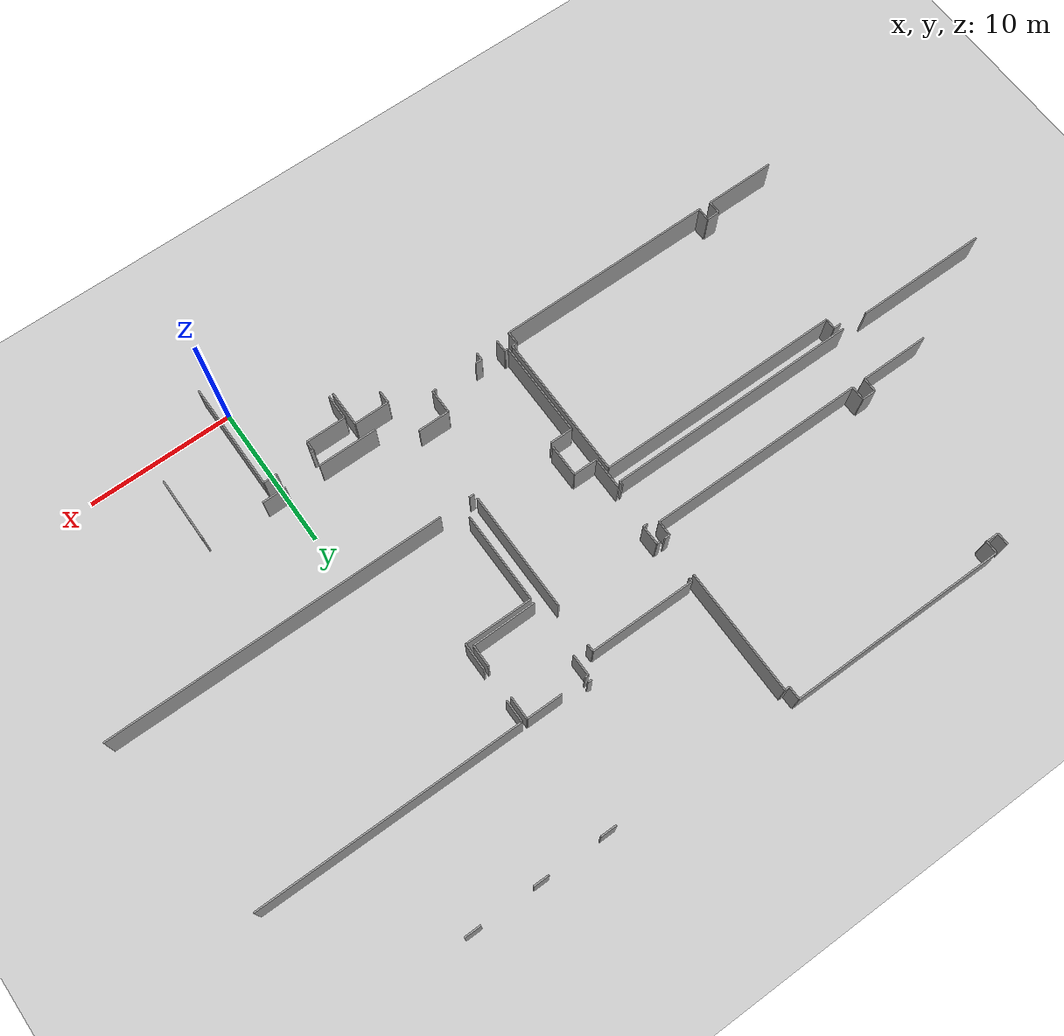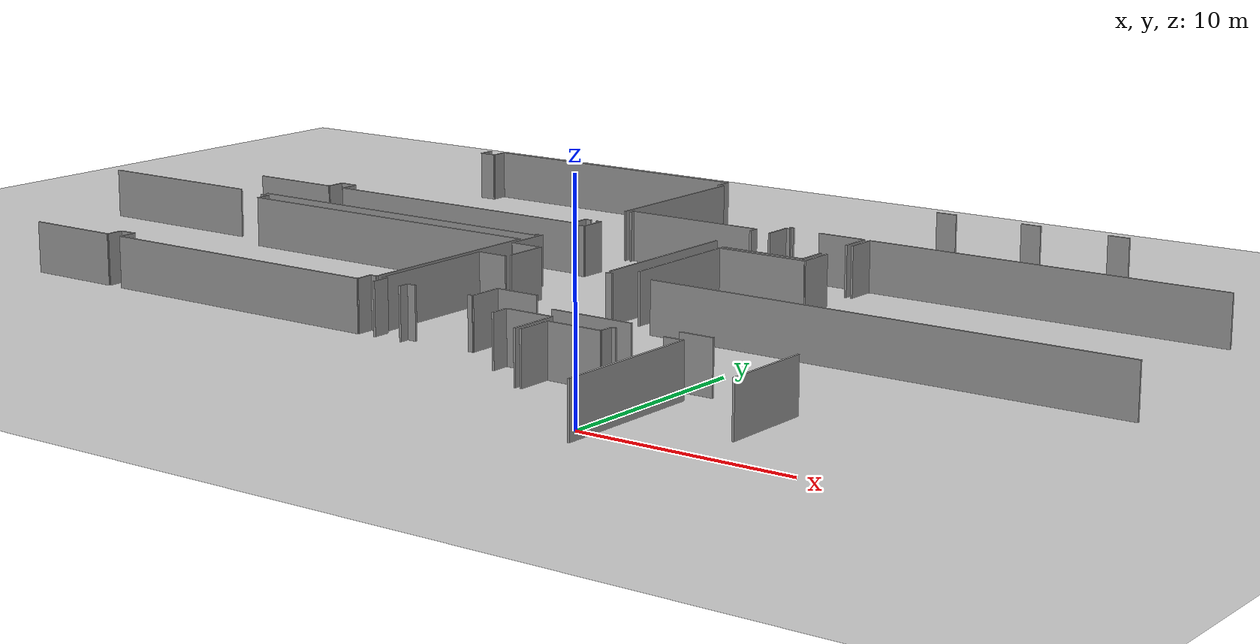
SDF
<sdf version="1.6">
 <world name="default">
  <model name="ground_plane">
   <static>1</static>
   <link name="link">
    <collision name="collision">
     <geometry><plane><normal>0 0 1</normal><size>100 100</size></plane></geometry>
     <surface><friction><ode><mu>100</mu><mu2>50</mu2></ode></friction></surface>
    </collision>
    <visual name="visual">
     <cast_shadows>0</cast_shadows>
     <geometry><plane><normal>0 0 1</normal><size>100 100</size></plane></geometry>
     <material>
      <script><uri>file://media/materials/scripts/gazebo.material</uri><name>Gazebo/Grey</name></script>
     </material>
    </visual>
   </link>
  </model>
  <model name="0510035740_A_40_1_103">
   <static>1</static>
   <link name="Wall_114">
    <collision name="Wall_114_Collision">
     <geometry><box><size>0.275883073292 0.1 2.5</size></box></geometry>
     <pose>0.137941536646 0 1.25 0 0 0</pose>
    </collision>
    <visual name="Wall_114_Visual">
     <pose>0.137941536646 0 1.25 0 0 0</pose>
     <geometry><box><size>0.275883073292 0.1 2.5</size></box></geometry>
     <material>
      <script><uri>file://media/materials/scripts/gazebo.material</uri><name>Gazebo/Grey</name></script>
      <ambient>1 1 1 1</ambient>
     </material>
    </visual>
    <pose>77.2378698375 -30.8539812059 0 0 0 -1.57079632679</pose>
   </link>
   <link name="Wall_115">
    <collision name="Wall_115_Collision">
     <geometry><box><size>17.5113417892 0.1 2.5</size></box></geometry>
     <pose>8.75567089459 0 1.25 0 0 0</pose>
    </collision>
    <visual name="Wall_115_Visual">
     <pose>8.75567089459 0 1.25 0 0 0</pose>
     <geometry><box><size>17.5113417892 0.1 2.5</size></box></geometry>
     <material>
      <script><uri>file://media/materials/scripts/gazebo.material</uri><name>Gazebo/Grey</name></script>
      <ambient>1 1 1 1</ambient>
     </material>
    </visual>
    <pose>77.2378698375 -31.1298642792 0 0 0 3.14159265359</pose>
   </link>
   <link name="Wall_116">
    <collision name="Wall_116_Collision">
     <geometry><box><size>9.19779445823 0.1 2.5</size></box></geometry>
     <pose>4.59889722911 0 1.25 0 0 0</pose>
    </collision>
    <visual name="Wall_116_Visual">
     <pose>4.59889722911 0 1.25 0 0 0</pose>
     <geometry><box><size>9.19779445823 0.1 2.5</size></box></geometry>
     <material>
      <script><uri>file://media/materials/scripts/gazebo.material</uri><name>Gazebo/Grey</name></script>
      <ambient>1 1 1 1</ambient>
     </material>
    </visual>
    <pose>57.9189482434 -31.1298642792 0 0 0 3.14159265359</pose>
   </link>
   <link name="Wall_152">
    <collision name="Wall_152_Collision">
     <geometry><box><size>0.504558923371 0.1 2.5</size></box></geometry>
     <pose>0.252279461685 0 1.25 0 0 0</pose>
    </collision>
    <visual name="Wall_152_Visual">
     <pose>0.252279461685 0 1.25 0 0 0</pose>
     <geometry><box><size>0.504558923371 0.1 2.5</size></box></geometry>
     <material>
      <script><uri>file://media/materials/scripts/gazebo.material</uri><name>Gazebo/Grey</name></script>
      <ambient>1 1 1 1</ambient>
     </material>
    </visual>
    <pose>59.682874057 -31.4859488715 0 0 0 0.0</pose>
   </link>
   <link name="Wall_153">
    <collision name="Wall_153_Collision">
     <geometry><box><size>0.75607697823 0.1 2.5</size></box></geometry>
     <pose>0.378038489115 0 1.25 0 0 0</pose>
    </collision>
    <visual name="Wall_153_Visual">
     <pose>0.378038489115 0 1.25 0 0 0</pose>
     <geometry><box><size>0.75607697823 0.1 2.5</size></box></geometry>
     <material>
      <script><uri>file://media/materials/scripts/gazebo.material</uri><name>Gazebo/Grey</name></script>
      <ambient>1 1 1 1</ambient>
     </material>
    </visual>
    <pose>60.1874329803 -31.4859488715 0 0 0 -1.57079632679</pose>
   </link>
   <link name="Wall_154">
    <collision name="Wall_154_Collision">
     <geometry><box><size>17.0509444617 0.1 2.5</size></box></geometry>
     <pose>8.52547223086 0 1.25 0 0 0</pose>
    </collision>
    <visual name="Wall_154_Visual">
     <pose>8.52547223086 0 1.25 0 0 0</pose>
     <geometry><box><size>17.0509444617 0.1 2.5</size></box></geometry>
     <material>
      <script><uri>file://media/materials/scripts/gazebo.material</uri><name>Gazebo/Grey</name></script>
      <ambient>1 1 1 1</ambient>
     </material>
    </visual>
    <pose>60.1874329803 -32.2420258498 0 0 0 0.0</pose>
   </link>
   <link name="Wall_155">
    <collision name="Wall_155_Collision">
     <geometry><box><size>10.02899691 0.1 2.5</size></box></geometry>
     <pose>5.01449845498 0 1.25 0 0 0</pose>
    </collision>
    <visual name="Wall_155_Visual">
     <pose>5.01449845498 0 1.25 0 0 0</pose>
     <geometry><box><size>10.02899691 0.1 2.5</size></box></geometry>
     <material>
      <script><uri>file://media/materials/scripts/gazebo.material</uri><name>Gazebo/Grey</name></script>
      <ambient>1 1 1 1</ambient>
     </material>
    </visual>
    <pose>77.2383774421 -32.2420258498 0 0 0 -1.57079632679</pose>
   </link>
   <link name="Wall_156">
    <collision name="Wall_156_Collision">
     <geometry><box><size>0.350500942241 0.1 2.5</size></box></geometry>
     <pose>0.17525047112 0 1.25 0 0 0</pose>
    </collision>
    <visual name="Wall_156_Visual">
     <pose>0.17525047112 0 1.25 0 0 0</pose>
     <geometry><box><size>0.350500942241 0.1 2.5</size></box></geometry>
     <material>
      <script><uri>file://media/materials/scripts/gazebo.material</uri><name>Gazebo/Grey</name></script>
      <ambient>1 1 1 1</ambient>
     </material>
    </visual>
    <pose>77.2383774421 -42.2710227597 0 0 0 3.14159265359</pose>
   </link>
   <link name="Wall_157">
    <collision name="Wall_157_Collision">
     <geometry><box><size>0.866734770277 0.1 2.5</size></box></geometry>
     <pose>0.433367385139 0 1.25 0 0 0</pose>
    </collision>
    <visual name="Wall_157_Visual">
     <pose>0.433367385139 0 1.25 0 0 0</pose>
     <geometry><box><size>0.866734770277 0.1 2.5</size></box></geometry>
     <material>
      <script><uri>file://media/materials/scripts/gazebo.material</uri><name>Gazebo/Grey</name></script>
      <ambient>1 1 1 1</ambient>
     </material>
    </visual>
    <pose>76.8878764998 -42.2710227597 0 0 0 -1.57079632679</pose>
   </link>
   <link name="Wall_158">
    <collision name="Wall_158_Collision">
     <geometry><box><size>15.0763627596 0.1 2.5</size></box></geometry>
     <pose>7.5381813798 0 1.25 0 0 0</pose>
    </collision>
    <visual name="Wall_158_Visual">
     <pose>7.5381813798 0 1.25 0 0 0</pose>
     <geometry><box><size>15.0763627596 0.1 2.5</size></box></geometry>
     <material>
      <script><uri>file://media/materials/scripts/gazebo.material</uri><name>Gazebo/Grey</name></script>
      <ambient>1 1 1 1</ambient>
     </material>
    </visual>
    <pose>76.8878764998 -43.13775753 0 0 0 3.14159265359</pose>
   </link>
   <link name="Wall_159">
    <collision name="Wall_159_Collision">
     <geometry><box><size>0.899729066071 0.1 2.5</size></box></geometry>
     <pose>0.449864533036 0 1.25 0 0 0</pose>
    </collision>
    <visual name="Wall_159_Visual">
     <pose>0.449864533036 0 1.25 0 0 0</pose>
     <geometry><box><size>0.899729066071 0.1 2.5</size></box></geometry>
     <material>
      <script><uri>file://media/materials/scripts/gazebo.material</uri><name>Gazebo/Grey</name></script>
      <ambient>1 1 1 1</ambient>
     </material>
    </visual>
    <pose>61.8115137402 -43.13775753 0 0 0 1.57079632679</pose>
   </link>
   <link name="Wall_160">
    <collision name="Wall_160_Collision">
     <geometry><box><size>0.877902070392 0.1 2.5</size></box></geometry>
     <pose>0.438951035196 0 1.25 0 0 0</pose>
    </collision>
    <visual name="Wall_160_Visual">
     <pose>0.438951035196 0 1.25 0 0 0</pose>
     <geometry><box><size>0.877902070392 0.1 2.5</size></box></geometry>
     <material>
      <script><uri>file://media/materials/scripts/gazebo.material</uri><name>Gazebo/Grey</name></script>
      <ambient>1 1 1 1</ambient>
     </material>
    </visual>
    <pose>61.8115137402 -42.2380284639 0 0 0 3.14159265359</pose>
   </link>
   <link name="Wall_161">
    <collision name="Wall_161_Collision">
     <geometry><box><size>0.877648268117 0.1 2.5</size></box></geometry>
     <pose>0.438824134058 0 1.25 0 0 0</pose>
    </collision>
    <visual name="Wall_161_Visual">
     <pose>0.438824134058 0 1.25 0 0 0</pose>
     <geometry><box><size>0.877648268117 0.1 2.5</size></box></geometry>
     <material>
      <script><uri>file://media/materials/scripts/gazebo.material</uri><name>Gazebo/Grey</name></script>
      <ambient>1 1 1 1</ambient>
     </material>
    </visual>
    <pose>60.9336116698 -42.2380284639 0 0 0 -1.57079632679</pose>
   </link>
   <link name="Wall_162">
    <collision name="Wall_162_Collision">
     <geometry><box><size>4.84432483384 0.1 2.5</size></box></geometry>
     <pose>2.42216241692 0 1.25 0 0 0</pose>
    </collision>
    <visual name="Wall_162_Visual">
     <pose>2.42216241692 0 1.25 0 0 0</pose>
     <geometry><box><size>4.84432483384 0.1 2.5</size></box></geometry>
     <material>
      <script><uri>file://media/materials/scripts/gazebo.material</uri><name>Gazebo/Grey</name></script>
      <ambient>1 1 1 1</ambient>
     </material>
    </visual>
    <pose>60.9336116698 -43.115676732 0 0 0 -3.14101634517</pose>
   </link>
   <link name="Wall_163">
    <collision name="Wall_163_Collision">
     <geometry><box><size>2.19564348394 0.1 2.5</size></box></geometry>
     <pose>1.09782174197 0 1.25 0 0 0</pose>
    </collision>
    <visual name="Wall_163_Visual">
     <pose>1.09782174197 0 1.25 0 0 0</pose>
     <geometry><box><size>2.19564348394 0.1 2.5</size></box></geometry>
     <material>
      <script><uri>file://media/materials/scripts/gazebo.material</uri><name>Gazebo/Grey</name></script>
      <ambient>1 1 1 1</ambient>
     </material>
    </visual>
    <pose>79.1809800575 -35.3077035336 0 0 0 1.57079632679</pose>
   </link>
   <link name="Wall_164">
    <collision name="Wall_164_Collision">
     <geometry><box><size>1.66570433304 0.1 2.5</size></box></geometry>
     <pose>0.83285216652 0 1.25 0 0 0</pose>
    </collision>
    <visual name="Wall_164_Visual">
     <pose>0.83285216652 0 1.25 0 0 0</pose>
     <geometry><box><size>1.66570433304 0.1 2.5</size></box></geometry>
     <material>
      <script><uri>file://media/materials/scripts/gazebo.material</uri><name>Gazebo/Grey</name></script>
      <ambient>1 1 1 1</ambient>
     </material>
    </visual>
    <pose>79.1809800575 -33.1120600496 0 0 0 3.14159265359</pose>
   </link>
   <link name="Wall_165">
    <collision name="Wall_165_Collision">
     <geometry><box><size>2.2207699092 0.1 2.5</size></box></geometry>
     <pose>1.1103849546 0 1.25 0 0 0</pose>
    </collision>
    <visual name="Wall_165_Visual">
     <pose>1.1103849546 0 1.25 0 0 0</pose>
     <geometry><box><size>2.2207699092 0.1 2.5</size></box></geometry>
     <material>
      <script><uri>file://media/materials/scripts/gazebo.material</uri><name>Gazebo/Grey</name></script>
      <ambient>1 1 1 1</ambient>
     </material>
    </visual>
    <pose>77.5152757244 -33.1120600496 0 0 0 1.57079632679</pose>
   </link>
   <link name="Wall_166">
    <collision name="Wall_166_Collision">
     <geometry><box><size>0.303547521304 0.1 2.5</size></box></geometry>
     <pose>0.151773760652 0 1.25 0 0 0</pose>
    </collision>
    <visual name="Wall_166_Visual">
     <pose>0.151773760652 0 1.25 0 0 0</pose>
     <geometry><box><size>0.303547521304 0.1 2.5</size></box></geometry>
     <material>
      <script><uri>file://media/materials/scripts/gazebo.material</uri><name>Gazebo/Grey</name></script>
      <ambient>1 1 1 1</ambient>
     </material>
    </visual>
    <pose>77.5152757244 -28.0098729085 0 0 0 0.0</pose>
   </link>
   <link name="Wall_167">
    <collision name="Wall_167_Collision">
     <geometry><box><size>1.32053323858 0.1 2.5</size></box></geometry>
     <pose>0.66026661929 0 1.25 0 0 0</pose>
    </collision>
    <visual name="Wall_167_Visual">
     <pose>0.66026661929 0 1.25 0 0 0</pose>
     <geometry><box><size>1.32053323858 0.1 2.5</size></box></geometry>
     <material>
      <script><uri>file://media/materials/scripts/gazebo.material</uri><name>Gazebo/Grey</name></script>
      <ambient>1 1 1 1</ambient>
     </material>
    </visual>
    <pose>77.8188232458 -28.0098729085 0 0 0 1.57079632679</pose>
   </link>
   <link name="Wall_168">
    <collision name="Wall_168_Collision">
     <geometry><box><size>0.265477180003 0.1 2.5</size></box></geometry>
     <pose>0.132738590001 0 1.25 0 0 0</pose>
    </collision>
    <visual name="Wall_168_Visual">
     <pose>0.132738590001 0 1.25 0 0 0</pose>
     <geometry><box><size>0.265477180003 0.1 2.5</size></box></geometry>
     <material>
      <script><uri>file://media/materials/scripts/gazebo.material</uri><name>Gazebo/Grey</name></script>
      <ambient>1 1 1 1</ambient>
     </material>
    </visual>
    <pose>77.8188232458 -26.6893396699 0 0 0 3.14159265359</pose>
   </link>
   <link name="Wall_169">
    <collision name="Wall_169_Collision">
     <geometry><box><size>0.2634467618 0.1 2.5</size></box></geometry>
     <pose>0.1317233809 0 1.25 0 0 0</pose>
    </collision>
    <visual name="Wall_169_Visual">
     <pose>0.1317233809 0 1.25 0 0 0</pose>
     <geometry><box><size>0.2634467618 0.1 2.5</size></box></geometry>
     <material>
      <script><uri>file://media/materials/scripts/gazebo.material</uri><name>Gazebo/Grey</name></script>
      <ambient>1 1 1 1</ambient>
     </material>
    </visual>
    <pose>77.5533460657 -23.8919309912 0 0 0 1.57079632679</pose>
   </link>
   <link name="Wall_170">
    <collision name="Wall_170_Collision">
     <geometry><box><size>7.26788195656 0.1 2.5</size></box></geometry>
     <pose>3.63394097828 0 1.25 0 0 0</pose>
    </collision>
    <visual name="Wall_170_Visual">
     <pose>3.63394097828 0 1.25 0 0 0</pose>
     <geometry><box><size>7.26788195656 0.1 2.5</size></box></geometry>
     <material>
      <script><uri>file://media/materials/scripts/gazebo.material</uri><name>Gazebo/Grey</name></script>
      <ambient>1 1 1 1</ambient>
     </material>
    </visual>
    <pose>77.5533460657 -23.6284842294 0 0 0 0.0</pose>
   </link>
   <link name="Wall_171">
    <collision name="Wall_171_Collision">
     <geometry><box><size>0.514711014384 0.1 2.5</size></box></geometry>
     <pose>0.257355507192 0 1.25 0 0 0</pose>
    </collision>
    <visual name="Wall_171_Visual">
     <pose>0.257355507192 0 1.25 0 0 0</pose>
     <geometry><box><size>0.514711014384 0.1 2.5</size></box></geometry>
     <material>
      <script><uri>file://media/materials/scripts/gazebo.material</uri><name>Gazebo/Grey</name></script>
      <ambient>1 1 1 1</ambient>
     </material>
    </visual>
    <pose>84.8212280223 -23.6284842294 0 0 0 -1.57079632679</pose>
   </link>
   <link name="Wall_172">
    <collision name="Wall_172_Collision">
     <geometry><box><size>8.28715189432 0.1 2.5</size></box></geometry>
     <pose>4.14357594716 0 1.25 0 0 0</pose>
    </collision>
    <visual name="Wall_172_Visual">
     <pose>4.14357594716 0 1.25 0 0 0</pose>
     <geometry><box><size>8.28715189432 0.1 2.5</size></box></geometry>
     <material>
      <script><uri>file://media/materials/scripts/gazebo.material</uri><name>Gazebo/Grey</name></script>
      <ambient>1 1 1 1</ambient>
     </material>
    </visual>
    <pose>84.8212280223 -26.9941562026 0 0 0 -1.57079632679</pose>
   </link>
   <link name="Wall_175">
    <collision name="Wall_175_Collision">
     <geometry><box><size>0.858105492916 0.1 2.5</size></box></geometry>
     <pose>0.429052746458 0 1.25 0 0 0</pose>
    </collision>
    <visual name="Wall_175_Visual">
     <pose>0.429052746458 0 1.25 0 0 0</pose>
     <geometry><box><size>0.858105492916 0.1 2.5</size></box></geometry>
     <material>
      <script><uri>file://media/materials/scripts/gazebo.material</uri><name>Gazebo/Grey</name></script>
      <ambient>1 1 1 1</ambient>
     </material>
    </visual>
    <pose>60.9346268789 -14.461907451 0 0 0 -1.57079632679</pose>
   </link>
   <link name="Wall_176">
    <collision name="Wall_176_Collision">
     <geometry><box><size>0.883485720449 0.1 2.5</size></box></geometry>
     <pose>0.441742860225 0 1.25 0 0 0</pose>
    </collision>
    <visual name="Wall_176_Visual">
     <pose>0.441742860225 0 1.25 0 0 0</pose>
     <geometry><box><size>0.883485720449 0.1 2.5</size></box></geometry>
     <material>
      <script><uri>file://media/materials/scripts/gazebo.material</uri><name>Gazebo/Grey</name></script>
      <ambient>1 1 1 1</ambient>
     </material>
    </visual>
    <pose>60.9346268789 -15.3200129439 0 0 0 0.0</pose>
   </link>
   <link name="Wall_177">
    <collision name="Wall_177_Collision">
     <geometry><box><size>0.870541804407 0.1 2.5</size></box></geometry>
     <pose>0.435270902204 0 1.25 0 0 0</pose>
    </collision>
    <visual name="Wall_177_Visual">
     <pose>0.435270902204 0 1.25 0 0 0</pose>
     <geometry><box><size>0.870541804407 0.1 2.5</size></box></geometry>
     <material>
      <script><uri>file://media/materials/scripts/gazebo.material</uri><name>Gazebo/Grey</name></script>
      <ambient>1 1 1 1</ambient>
     </material>
    </visual>
    <pose>61.8181125994 -15.3200129439 0 0 0 1.57079632679</pose>
   </link>
   <link name="Wall_178">
    <collision name="Wall_178_Collision">
     <geometry><box><size>15.0915908961 0.1 2.5</size></box></geometry>
     <pose>7.54579544806 0 1.25 0 0 0</pose>
    </collision>
    <visual name="Wall_178_Visual">
     <pose>7.54579544806 0 1.25 0 0 0</pose>
     <geometry><box><size>15.0915908961 0.1 2.5</size></box></geometry>
     <material>
      <script><uri>file://media/materials/scripts/gazebo.material</uri><name>Gazebo/Grey</name></script>
      <ambient>1 1 1 1</ambient>
     </material>
    </visual>
    <pose>61.8181125994 -14.4494711395 0 0 0 0.0</pose>
   </link>
   <link name="Wall_179">
    <collision name="Wall_179_Collision">
     <geometry><box><size>0.883739522725 0.1 2.5</size></box></geometry>
     <pose>0.441869761362 0 1.25 0 0 0</pose>
    </collision>
    <visual name="Wall_179_Visual">
     <pose>0.441869761362 0 1.25 0 0 0</pose>
     <geometry><box><size>0.883739522725 0.1 2.5</size></box></geometry>
     <material>
      <script><uri>file://media/materials/scripts/gazebo.material</uri><name>Gazebo/Grey</name></script>
      <ambient>1 1 1 1</ambient>
     </material>
    </visual>
    <pose>76.9097034955 -14.4494711395 0 0 0 -1.57079632679</pose>
   </link>
   <link name="Wall_180">
    <collision name="Wall_180_Collision">
     <geometry><box><size>0.318268053273 0.1 2.5</size></box></geometry>
     <pose>0.159134026637 0 1.25 0 0 0</pose>
    </collision>
    <visual name="Wall_180_Visual">
     <pose>0.159134026637 0 1.25 0 0 0</pose>
     <geometry><box><size>0.318268053273 0.1 2.5</size></box></geometry>
     <material>
      <script><uri>file://media/materials/scripts/gazebo.material</uri><name>Gazebo/Grey</name></script>
      <ambient>1 1 1 1</ambient>
     </material>
    </visual>
    <pose>76.9097034955 -15.3332106622 0 0 0 0.0</pose>
   </link>
   <link name="Wall_181">
    <collision name="Wall_181_Collision">
     <geometry><box><size>8.56912622222 0.1 2.5</size></box></geometry>
     <pose>4.28456311111 0 1.25 0 0 0</pose>
    </collision>
    <visual name="Wall_181_Visual">
     <pose>4.28456311111 0 1.25 0 0 0</pose>
     <geometry><box><size>8.56912622222 0.1 2.5</size></box></geometry>
     <material>
      <script><uri>file://media/materials/scripts/gazebo.material</uri><name>Gazebo/Grey</name></script>
      <ambient>1 1 1 1</ambient>
     </material>
    </visual>
    <pose>77.2279715488 -15.3332106622 0 0 0 -1.57079632679</pose>
   </link>
   <link name="Wall_182">
    <collision name="Wall_182_Collision">
     <geometry><box><size>0.356084592298 0.1 2.5</size></box></geometry>
     <pose>0.178042296149 0 1.25 0 0 0</pose>
    </collision>
    <visual name="Wall_182_Visual">
     <pose>0.178042296149 0 1.25 0 0 0</pose>
     <geometry><box><size>0.356084592298 0.1 2.5</size></box></geometry>
     <material>
      <script><uri>file://media/materials/scripts/gazebo.material</uri><name>Gazebo/Grey</name></script>
      <ambient>1 1 1 1</ambient>
     </material>
    </visual>
    <pose>77.2279715488 -26.6766495562 0 0 0 3.14159265359</pose>
   </link>
   <link name="Wall_183">
    <collision name="Wall_183_Collision">
     <geometry><box><size>1.02206176278 0.1 2.5</size></box></geometry>
     <pose>0.511030881392 0 1.25 0 0 0</pose>
    </collision>
    <visual name="Wall_183_Visual">
     <pose>0.511030881392 0 1.25 0 0 0</pose>
     <geometry><box><size>1.02206176278 0.1 2.5</size></box></geometry>
     <material>
      <script><uri>file://media/materials/scripts/gazebo.material</uri><name>Gazebo/Grey</name></script>
      <ambient>1 1 1 1</ambient>
     </material>
    </visual>
    <pose>76.8718869565 -26.6766495562 0 0 0 -1.57079632679</pose>
   </link>
   <link name="Wall_184">
    <collision name="Wall_184_Collision">
     <geometry><box><size>15.0299169432 0.1 2.5</size></box></geometry>
     <pose>7.5149584716 0 1.25 0 0 0</pose>
    </collision>
    <visual name="Wall_184_Visual">
     <pose>7.5149584716 0 1.25 0 0 0</pose>
     <geometry><box><size>15.0299169432 0.1 2.5</size></box></geometry>
     <material>
      <script><uri>file://media/materials/scripts/gazebo.material</uri><name>Gazebo/Grey</name></script>
      <ambient>1 1 1 1</ambient>
     </material>
    </visual>
    <pose>76.8718869565 -27.6987113189 0 0 0 3.14159265359</pose>
   </link>
   <link name="Wall_185">
    <collision name="Wall_185_Collision">
     <geometry><box><size>0.980438189628 0.1 2.5</size></box></geometry>
     <pose>0.490219094814 0 1.25 0 0 0</pose>
    </collision>
    <visual name="Wall_185_Visual">
     <pose>0.490219094814 0 1.25 0 0 0</pose>
     <geometry><box><size>0.980438189628 0.1 2.5</size></box></geometry>
     <material>
      <script><uri>file://media/materials/scripts/gazebo.material</uri><name>Gazebo/Grey</name></script>
      <ambient>1 1 1 1</ambient>
     </material>
    </visual>
    <pose>61.8419700133 -27.6987113189 0 0 0 1.57079632679</pose>
   </link>
   <link name="Wall_186">
    <collision name="Wall_186_Collision">
     <geometry><box><size>0.957595984848 0.1 2.5</size></box></geometry>
     <pose>0.478797992424 0 1.25 0 0 0</pose>
    </collision>
    <visual name="Wall_186_Visual">
     <pose>0.478797992424 0 1.25 0 0 0</pose>
     <geometry><box><size>0.957595984848 0.1 2.5</size></box></geometry>
     <material>
      <script><uri>file://media/materials/scripts/gazebo.material</uri><name>Gazebo/Grey</name></script>
      <ambient>1 1 1 1</ambient>
     </material>
    </visual>
    <pose>61.8419700133 -26.7182731293 0 0 0 3.14159265359</pose>
   </link>
   <link name="Wall_187">
    <collision name="Wall_187_Collision">
     <geometry><box><size>0.986783246512 0.1 2.5</size></box></geometry>
     <pose>0.493391623256 0 1.25 0 0 0</pose>
    </collision>
    <visual name="Wall_187_Visual">
     <pose>0.493391623256 0 1.25 0 0 0</pose>
     <geometry><box><size>0.986783246512 0.1 2.5</size></box></geometry>
     <material>
      <script><uri>file://media/materials/scripts/gazebo.material</uri><name>Gazebo/Grey</name></script>
      <ambient>1 1 1 1</ambient>
     </material>
    </visual>
    <pose>60.8843740284 -26.7182731293 0 0 0 -1.57079632679</pose>
   </link>
   <link name="Wall_188">
    <collision name="Wall_188_Collision">
     <geometry><box><size>4.77427460137 0.1 2.5</size></box></geometry>
     <pose>2.38713730069 0 1.25 0 0 0</pose>
    </collision>
    <visual name="Wall_188_Visual">
     <pose>2.38713730069 0 1.25 0 0 0</pose>
     <geometry><box><size>4.77427460137 0.1 2.5</size></box></geometry>
     <material>
      <script><uri>file://media/materials/scripts/gazebo.material</uri><name>Gazebo/Grey</name></script>
      <ambient>1 1 1 1</ambient>
     </material>
    </visual>
    <pose>60.8843740284 -27.7050563758 0 0 0 3.14159265359</pose>
   </link>
   <link name="Wall_189">
    <collision name="Wall_189_Collision">
     <geometry><box><size>1.47179939468 0.1 2.5</size></box></geometry>
     <pose>0.735899697341 0 1.25 0 0 0</pose>
    </collision>
    <visual name="Wall_189_Visual">
     <pose>0.735899697341 0 1.25 0 0 0</pose>
     <geometry><box><size>1.47179939468 0.1 2.5</size></box></geometry>
     <material>
      <script><uri>file://media/materials/scripts/gazebo.material</uri><name>Gazebo/Grey</name></script>
      <ambient>1 1 1 1</ambient>
     </material>
    </visual>
    <pose>85.8755226741 -24.1132465753 0 0 0 1.57079632679</pose>
   </link>
   <link name="Wall_190">
    <collision name="Wall_190_Collision">
     <geometry><box><size>0.247457218454 0.1 2.5</size></box></geometry>
     <pose>0.123728609227 0 1.25 0 0 0</pose>
    </collision>
    <visual name="Wall_190_Visual">
     <pose>0.123728609227 0 1.25 0 0 0</pose>
     <geometry><box><size>0.247457218454 0.1 2.5</size></box></geometry>
     <material>
      <script><uri>file://media/materials/scripts/gazebo.material</uri><name>Gazebo/Grey</name></script>
      <ambient>1 1 1 1</ambient>
     </material>
    </visual>
    <pose>85.8755226741 -22.6414471806 0 0 0 0.0</pose>
   </link>
   <link name="Wall_191">
    <collision name="Wall_191_Collision">
     <geometry><box><size>2.47457218454 0.1 2.5</size></box></geometry>
     <pose>1.23728609227 0 1.25 0 0 0</pose>
    </collision>
    <visual name="Wall_191_Visual">
     <pose>1.23728609227 0 1.25 0 0 0</pose>
     <geometry><box><size>2.47457218454 0.1 2.5</size></box></geometry>
     <material>
      <script><uri>file://media/materials/scripts/gazebo.material</uri><name>Gazebo/Grey</name></script>
      <ambient>1 1 1 1</ambient>
     </material>
    </visual>
    <pose>87.7701566595 -22.6414471806 0 0 0 0.0</pose>
   </link>
   <link name="Wall_192">
    <collision name="Wall_192_Collision">
     <geometry><box><size>1.60149235738 0.1 2.5</size></box></geometry>
     <pose>0.800746178689 0 1.25 0 0 0</pose>
    </collision>
    <visual name="Wall_192_Visual">
     <pose>0.800746178689 0 1.25 0 0 0</pose>
     <geometry><box><size>1.60149235738 0.1 2.5</size></box></geometry>
     <material>
      <script><uri>file://media/materials/scripts/gazebo.material</uri><name>Gazebo/Grey</name></script>
      <ambient>1 1 1 1</ambient>
     </material>
    </visual>
    <pose>90.244728844 -22.6414471806 0 0 0 -1.57079632679</pose>
   </link>
   <link name="Wall_193">
    <collision name="Wall_193_Collision">
     <geometry><box><size>1.51113874736 0.1 2.5</size></box></geometry>
     <pose>0.755569373679 0 1.25 0 0 0</pose>
    </collision>
    <visual name="Wall_193_Visual">
     <pose>0.755569373679 0 1.25 0 0 0</pose>
     <geometry><box><size>1.51113874736 0.1 2.5</size></box></geometry>
     <material>
      <script><uri>file://media/materials/scripts/gazebo.material</uri><name>Gazebo/Grey</name></script>
      <ambient>1 1 1 1</ambient>
     </material>
    </visual>
    <pose>90.244728844 -26.4461970902 0 0 0 -1.57079632679</pose>
   </link>
   <link name="Wall_194">
    <collision name="Wall_194_Collision">
     <geometry><box><size>4.36939252597 0.1 2.5</size></box></geometry>
     <pose>2.18469626299 0 1.25 0 0 0</pose>
    </collision>
    <visual name="Wall_194_Visual">
     <pose>2.18469626299 0 1.25 0 0 0</pose>
     <geometry><box><size>4.36939252597 0.1 2.5</size></box></geometry>
     <material>
      <script><uri>file://media/materials/scripts/gazebo.material</uri><name>Gazebo/Grey</name></script>
      <ambient>1 1 1 1</ambient>
     </material>
    </visual>
    <pose>90.244728844 -27.9573358375 0 0 0 -3.13235678493</pose>
   </link>
   <link name="Wall_195">
    <collision name="Wall_195_Collision">
     <geometry><box><size>0.866988572553 0.1 2.5</size></box></geometry>
     <pose>0.433494286276 0 1.25 0 0 0</pose>
    </collision>
    <visual name="Wall_195_Visual">
     <pose>0.433494286276 0 1.25 0 0 0</pose>
     <geometry><box><size>0.866988572553 0.1 2.5</size></box></geometry>
     <material>
      <script><uri>file://media/materials/scripts/gazebo.material</uri><name>Gazebo/Grey</name></script>
      <ambient>1 1 1 1</ambient>
     </material>
    </visual>
    <pose>77.8203460594 -43.1268440322 0 0 0 1.57079632679</pose>
   </link>
   <link name="Wall_196">
    <collision name="Wall_196_Collision">
     <geometry><box><size>0.263192959525 0.1 2.5</size></box></geometry>
     <pose>0.131596479762 0 1.25 0 0 0</pose>
    </collision>
    <visual name="Wall_196_Visual">
     <pose>0.131596479762 0 1.25 0 0 0</pose>
     <geometry><box><size>0.263192959525 0.1 2.5</size></box></geometry>
     <material>
      <script><uri>file://media/materials/scripts/gazebo.material</uri><name>Gazebo/Grey</name></script>
      <ambient>1 1 1 1</ambient>
     </material>
    </visual>
    <pose>77.8203460594 -42.2598554596 0 0 0 3.14159265359</pose>
   </link>
   <link name="Wall_197">
    <collision name="Wall_197_Collision">
     <geometry><box><size>6.65977170485 0.1 2.5</size></box></geometry>
     <pose>3.32988585243 0 1.25 0 0 0</pose>
    </collision>
    <visual name="Wall_197_Visual">
     <pose>3.32988585243 0 1.25 0 0 0</pose>
     <geometry><box><size>6.65977170485 0.1 2.5</size></box></geometry>
     <material>
      <script><uri>file://media/materials/scripts/gazebo.material</uri><name>Gazebo/Grey</name></script>
      <ambient>1 1 1 1</ambient>
     </material>
    </visual>
    <pose>77.5571530999 -42.2598554596 0 0 0 1.57079632679</pose>
   </link>
   <link name="Wall_198">
    <collision name="Wall_198_Collision">
     <geometry><box><size>1.56240680698 0.1 2.5</size></box></geometry>
     <pose>0.781203403489 0 1.25 0 0 0</pose>
    </collision>
    <visual name="Wall_198_Visual">
     <pose>0.781203403489 0 1.25 0 0 0</pose>
     <geometry><box><size>1.56240680698 0.1 2.5</size></box></geometry>
     <material>
      <script><uri>file://media/materials/scripts/gazebo.material</uri><name>Gazebo/Grey</name></script>
      <ambient>1 1 1 1</ambient>
     </material>
    </visual>
    <pose>77.5571530999 -35.6000837548 0 0 0 0.0</pose>
   </link>
   <link name="Wall_199">
    <collision name="Wall_199_Collision">
     <geometry><box><size>0.34948573314 0.1 2.5</size></box></geometry>
     <pose>0.17474286657 0 1.25 0 0 0</pose>
    </collision>
    <visual name="Wall_199_Visual">
     <pose>0.17474286657 0 1.25 0 0 0</pose>
     <geometry><box><size>0.34948573314 0.1 2.5</size></box></geometry>
     <material>
      <script><uri>file://media/materials/scripts/gazebo.material</uri><name>Gazebo/Grey</name></script>
      <ambient>1 1 1 1</ambient>
     </material>
    </visual>
    <pose>84.8379789725 -35.6000837548 0 0 0 0.0</pose>
   </link>
   <link name="Wall_200">
    <collision name="Wall_200_Collision">
     <geometry><box><size>2.17051705869 0.1 2.5</size></box></geometry>
     <pose>1.08525852934 0 1.25 0 0 0</pose>
    </collision>
    <visual name="Wall_200_Visual">
     <pose>1.08525852934 0 1.25 0 0 0</pose>
     <geometry><box><size>2.17051705869 0.1 2.5</size></box></geometry>
     <material>
      <script><uri>file://media/materials/scripts/gazebo.material</uri><name>Gazebo/Grey</name></script>
      <ambient>1 1 1 1</ambient>
     </material>
    </visual>
    <pose>85.1874647056 -40.9525199393 0 0 0 3.14159265359</pose>
   </link>
   <link name="Wall_201">
    <collision name="Wall_201_Collision">
     <geometry><box><size>1.67382600585 0.1 2.5</size></box></geometry>
     <pose>0.836913002925 0 1.25 0 0 0</pose>
    </collision>
    <visual name="Wall_201_Visual">
     <pose>0.836913002925 0 1.25 0 0 0</pose>
     <geometry><box><size>1.67382600585 0.1 2.5</size></box></geometry>
     <material>
      <script><uri>file://media/materials/scripts/gazebo.material</uri><name>Gazebo/Grey</name></script>
      <ambient>1 1 1 1</ambient>
     </material>
    </visual>
    <pose>83.0169476469 -40.9525199393 0 0 0 -1.57079632679</pose>
   </link>
   <link name="Wall_202">
    <collision name="Wall_202_Collision">
     <geometry><box><size>0.247964823005 0.1 2.5</size></box></geometry>
     <pose>0.123982411502 0 1.25 0 0 0</pose>
    </collision>
    <visual name="Wall_202_Visual">
     <pose>0.123982411502 0 1.25 0 0 0</pose>
     <geometry><box><size>0.247964823005 0.1 2.5</size></box></geometry>
     <material>
      <script><uri>file://media/materials/scripts/gazebo.material</uri><name>Gazebo/Grey</name></script>
      <ambient>1 1 1 1</ambient>
     </material>
    </visual>
    <pose>83.0169476469 -42.6263459452 0 0 0 3.14159265359</pose>
   </link>
   <link name="Wall_203">
    <collision name="Wall_203_Collision">
     <geometry><box><size>0.467249988896 0.1 2.5</size></box></geometry>
     <pose>0.233624994448 0 1.25 0 0 0</pose>
    </collision>
    <visual name="Wall_203_Visual">
     <pose>0.233624994448 0 1.25 0 0 0</pose>
     <geometry><box><size>0.467249988896 0.1 2.5</size></box></geometry>
     <material>
      <script><uri>file://media/materials/scripts/gazebo.material</uri><name>Gazebo/Grey</name></script>
      <ambient>1 1 1 1</ambient>
     </material>
    </visual>
    <pose>79.7982271911 -42.6263459452 0 0 0 3.14159265359</pose>
   </link>
   <link name="Wall_204">
    <collision name="Wall_204_Collision">
     <geometry><box><size>0.522325082644 0.1 2.5</size></box></geometry>
     <pose>0.261162541322 0 1.25 0 0 0</pose>
    </collision>
    <visual name="Wall_204_Visual">
     <pose>0.261162541322 0 1.25 0 0 0</pose>
     <geometry><box><size>0.522325082644 0.1 2.5</size></box></geometry>
     <material>
      <script><uri>file://media/materials/scripts/gazebo.material</uri><name>Gazebo/Grey</name></script>
      <ambient>1 1 1 1</ambient>
     </material>
    </visual>
    <pose>79.3309772022 -42.6263459452 0 0 0 -1.57079632679</pose>
   </link>
   <link name="Wall_205">
    <collision name="Wall_205_Collision">
     <geometry><box><size>1.08754274982 0.1 2.5</size></box></geometry>
     <pose>0.54377137491 0 1.25 0 0 0</pose>
    </collision>
    <visual name="Wall_205_Visual">
     <pose>0.54377137491 0 1.25 0 0 0</pose>
     <geometry><box><size>1.08754274982 0.1 2.5</size></box></geometry>
     <material>
      <script><uri>file://media/materials/scripts/gazebo.material</uri><name>Gazebo/Grey</name></script>
      <ambient>1 1 1 1</ambient>
     </material>
    </visual>
    <pose>89.6914398838 -14.8613922324 0 0 0 0.0</pose>
   </link>
   <link name="Wall_206">
    <collision name="Wall_206_Collision">
     <geometry><box><size>1.04947240852 0.1 2.5</size></box></geometry>
     <pose>0.52473620426 0 1.25 0 0 0</pose>
    </collision>
    <visual name="Wall_206_Visual">
     <pose>0.52473620426 0 1.25 0 0 0</pose>
     <geometry><box><size>1.04947240852 0.1 2.5</size></box></geometry>
     <material>
      <script><uri>file://media/materials/scripts/gazebo.material</uri><name>Gazebo/Grey</name></script>
      <ambient>1 1 1 1</ambient>
     </material>
    </visual>
    <pose>94.3570871113 -14.8613922324 0 0 0 0.0</pose>
   </link>
   <link name="Wall_207">
    <collision name="Wall_207_Collision">
     <geometry><box><size>1.11647620921 0.1 2.5</size></box></geometry>
     <pose>0.558238104605 0 1.25 0 0 0</pose>
    </collision>
    <visual name="Wall_207_Visual">
     <pose>0.558238104605 0 1.25 0 0 0</pose>
     <geometry><box><size>1.11647620921 0.1 2.5</size></box></geometry>
     <material>
      <script><uri>file://media/materials/scripts/gazebo.material</uri><name>Gazebo/Grey</name></script>
      <ambient>1 1 1 1</ambient>
     </material>
    </visual>
    <pose>98.9463398539 -14.8613922324 0 0 0 0.0</pose>
   </link>
   <link name="Wall_212">
    <collision name="Wall_212_Collision">
     <geometry><box><size>0.264918275199 0.1 2.5</size></box></geometry>
     <pose>0.132459137599 0 1.25 0 0 0</pose>
    </collision>
    <visual name="Wall_212_Visual">
     <pose>0.132459137599 0 1.25 0 0 0</pose>
     <geometry><box><size>0.264918275199 0.1 2.5</size></box></geometry>
     <material>
      <script><uri>file://media/materials/scripts/gazebo.material</uri><name>Gazebo/Grey</name></script>
      <ambient>1 1 1 1</ambient>
     </material>
    </visual>
    <pose>86.1394770404 -22.3576962367 0 0 0 2.91450657303</pose>
   </link>
   <link name="Wall_213">
    <collision name="Wall_213_Collision">
     <geometry><box><size>6.28642855783 0.1 2.5</size></box></geometry>
     <pose>3.14321427892 0 1.25 0 0 0</pose>
    </collision>
    <visual name="Wall_213_Visual">
     <pose>3.14321427892 0 1.25 0 0 0</pose>
     <geometry><box><size>6.28642855783 0.1 2.5</size></box></geometry>
     <material>
      <script><uri>file://media/materials/scripts/gazebo.material</uri><name>Gazebo/Grey</name></script>
      <ambient>1 1 1 1</ambient>
     </material>
    </visual>
    <pose>85.8917660197 -34.5782757942 0 0 0 1.57079632679</pose>
   </link>
   <link name="Wall_214">
    <collision name="Wall_214_Collision">
     <geometry><box><size>4.67097707531 0.1 2.5</size></box></geometry>
     <pose>2.33548853765 0 1.25 0 0 0</pose>
    </collision>
    <visual name="Wall_214_Visual">
     <pose>2.33548853765 0 1.25 0 0 0</pose>
     <geometry><box><size>4.67097707531 0.1 2.5</size></box></geometry>
     <material>
      <script><uri>file://media/materials/scripts/gazebo.material</uri><name>Gazebo/Grey</name></script>
      <ambient>1 1 1 1</ambient>
     </material>
    </visual>
    <pose>85.8917660197 -28.2918472364 0 0 0 0.0</pose>
   </link>
   <link name="Wall_215">
    <collision name="Wall_215_Collision">
     <geometry><box><size>1.85478702817 0.1 2.5</size></box></geometry>
     <pose>0.927393514083 0 1.25 0 0 0</pose>
    </collision>
    <visual name="Wall_215_Visual">
     <pose>0.927393514083 0 1.25 0 0 0</pose>
     <geometry><box><size>1.85478702817 0.1 2.5</size></box></geometry>
     <material>
      <script><uri>file://media/materials/scripts/gazebo.material</uri><name>Gazebo/Grey</name></script>
      <ambient>1 1 1 1</ambient>
     </material>
    </visual>
    <pose>90.562743095 -28.2918472364 0 0 0 1.57079632679</pose>
   </link>
   <link name="Wall_216">
    <collision name="Wall_216_Collision">
     <geometry><box><size>1.54717867046 0.1 2.5</size></box></geometry>
     <pose>0.773589335228 0 1.25 0 0 0</pose>
    </collision>
    <visual name="Wall_216_Visual">
     <pose>0.773589335228 0 1.25 0 0 0</pose>
     <geometry><box><size>1.54717867046 0.1 2.5</size></box></geometry>
     <material>
      <script><uri>file://media/materials/scripts/gazebo.material</uri><name>Gazebo/Grey</name></script>
      <ambient>1 1 1 1</ambient>
     </material>
    </visual>
    <pose>90.562743095 -24.2211125423 0 0 0 1.57079632679</pose>
   </link>
   <link name="Wall_217">
    <collision name="Wall_217_Collision">
     <geometry><box><size>18.1054929157 0.1 2.5</size></box></geometry>
     <pose>9.05274645787 0 1.25 0 0 0</pose>
    </collision>
    <visual name="Wall_217_Visual">
     <pose>9.05274645787 0 1.25 0 0 0</pose>
     <geometry><box><size>18.1054929157 0.1 2.5</size></box></geometry>
     <material>
      <script><uri>file://media/materials/scripts/gazebo.material</uri><name>Gazebo/Grey</name></script>
      <ambient>1 1 1 1</ambient>
     </material>
    </visual>
    <pose>90.562743095 -22.6739338718 0 0 0 0.0</pose>
   </link>
   <link name="Wall_228">
    <collision name="Wall_228_Collision">
     <geometry><box><size>23.2835669372 0.1 2.5</size></box></geometry>
     <pose>11.6417834686 0 1.25 0 0 0</pose>
    </collision>
    <visual name="Wall_228_Visual">
     <pose>11.6417834686 0 1.25 0 0 0</pose>
     <geometry><box><size>23.2835669372 0.1 2.5</size></box></geometry>
     <material>
      <script><uri>file://media/materials/scripts/gazebo.material</uri><name>Gazebo/Grey</name></script>
      <ambient>1 1 1 1</ambient>
     </material>
    </visual>
    <pose>87.2879323363 -35.5955153138 0 0 0 0.0</pose>
   </link>
   <link name="Wall_240">
    <collision name="Wall_240_Collision">
     <geometry><box><size>1.63651707138 0.1 2.5</size></box></geometry>
     <pose>0.818258535688 0 1.25 0 0 0</pose>
    </collision>
    <visual name="Wall_240_Visual">
     <pose>0.818258535688 0 1.25 0 0 0</pose>
     <geometry><box><size>1.63651707138 0.1 2.5</size></box></geometry>
     <material>
      <script><uri>file://media/materials/scripts/gazebo.material</uri><name>Gazebo/Grey</name></script>
      <ambient>1 1 1 1</ambient>
     </material>
    </visual>
    <pose>95.4349853746 -42.5857375811 0 0 0 3.14159265359</pose>
   </link>
   <link name="Wall_241">
    <collision name="Wall_241_Collision">
     <geometry><box><size>4.0989067467 0.1 2.5</size></box></geometry>
     <pose>2.04945337335 0 1.25 0 0 0</pose>
    </collision>
    <visual name="Wall_241_Visual">
     <pose>2.04945337335 0 1.25 0 0 0</pose>
     <geometry><box><size>4.0989067467 0.1 2.5</size></box></geometry>
     <material>
      <script><uri>file://media/materials/scripts/gazebo.material</uri><name>Gazebo/Grey</name></script>
      <ambient>1 1 1 1</ambient>
     </material>
    </visual>
    <pose>91.386839083 -42.5857375811 0 0 0 3.14159265359</pose>
   </link>
   <link name="Wall_243">
    <collision name="Wall_243_Collision">
     <geometry><box><size>0.900998077448 0.1 2.5</size></box></geometry>
     <pose>0.450499038724 0 1.25 0 0 0</pose>
    </collision>
    <visual name="Wall_243_Visual">
     <pose>0.450499038724 0 1.25 0 0 0</pose>
     <geometry><box><size>0.900998077448 0.1 2.5</size></box></geometry>
     <material>
      <script><uri>file://media/materials/scripts/gazebo.material</uri><name>Gazebo/Grey</name></script>
      <ambient>1 1 1 1</ambient>
     </material>
    </visual>
    <pose>85.6668972037 -44.5192033147 0 0 0 1.57079632679</pose>
   </link>
   <link name="Wall_244">
    <collision name="Wall_244_Collision">
     <geometry><box><size>2.42508074085 0.1 2.5</size></box></geometry>
     <pose>1.21254037042 0 1.25 0 0 0</pose>
    </collision>
    <visual name="Wall_244_Visual">
     <pose>1.21254037042 0 1.25 0 0 0</pose>
     <geometry><box><size>2.42508074085 0.1 2.5</size></box></geometry>
     <material>
      <script><uri>file://media/materials/scripts/gazebo.material</uri><name>Gazebo/Grey</name></script>
      <ambient>1 1 1 1</ambient>
     </material>
    </visual>
    <pose>85.6668972037 -43.6182052372 0 0 0 0.0</pose>
   </link>
   <link name="Wall_245">
    <collision name="Wall_245_Collision">
     <geometry><box><size>2.4821862528 0.1 2.5</size></box></geometry>
     <pose>1.2410931264 0 1.25 0 0 0</pose>
    </collision>
    <visual name="Wall_245_Visual">
     <pose>1.2410931264 0 1.25 0 0 0</pose>
     <geometry><box><size>2.4821862528 0.1 2.5</size></box></geometry>
     <material>
      <script><uri>file://media/materials/scripts/gazebo.material</uri><name>Gazebo/Grey</name></script>
      <ambient>1 1 1 1</ambient>
     </material>
    </visual>
    <pose>88.0919779446 -43.6182052372 0 0 0 -1.57079632679</pose>
   </link>
   <link name="Wall_249">
    <collision name="Wall_249_Collision">
     <geometry><box><size>1.74133741109 0.1 2.5</size></box></geometry>
     <pose>0.870668705545 0 1.25 0 0 0</pose>
    </collision>
    <visual name="Wall_249_Visual">
     <pose>0.870668705545 0 1.25 0 0 0</pose>
     <geometry><box><size>1.74133741109 0.1 2.5</size></box></geometry>
     <material>
      <script><uri>file://media/materials/scripts/gazebo.material</uri><name>Gazebo/Grey</name></script>
      <ambient>1 1 1 1</ambient>
     </material>
    </visual>
    <pose>88.3914646295 -46.0762802739 0 0 0 1.57079632679</pose>
   </link>
   <link name="Wall_250">
    <collision name="Wall_250_Collision">
     <geometry><box><size>2.7486786419 0.1 2.5</size></box></geometry>
     <pose>1.37433932095 0 1.25 0 0 0</pose>
    </collision>
    <visual name="Wall_250_Visual">
     <pose>1.37433932095 0 1.25 0 0 0</pose>
     <geometry><box><size>2.7486786419 0.1 2.5</size></box></geometry>
     <material>
      <script><uri>file://media/materials/scripts/gazebo.material</uri><name>Gazebo/Grey</name></script>
      <ambient>1 1 1 1</ambient>
     </material>
    </visual>
    <pose>88.3914646295 -44.3349428628 0 0 0 0.0</pose>
   </link>
   <link name="Wall_251">
    <collision name="Wall_251_Collision">
     <geometry><box><size>0.711153975495 0.1 2.5</size></box></geometry>
     <pose>0.355576987748 0 1.25 0 0 0</pose>
    </collision>
    <visual name="Wall_251_Visual">
     <pose>0.355576987748 0 1.25 0 0 0</pose>
     <geometry><box><size>0.711153975495 0.1 2.5</size></box></geometry>
     <material>
      <script><uri>file://media/materials/scripts/gazebo.material</uri><name>Gazebo/Grey</name></script>
      <ambient>1 1 1 1</ambient>
     </material>
    </visual>
    <pose>91.1401432714 -44.3349428628 0 0 0 1.57079632679</pose>
   </link>
   <link name="Wall_252">
    <collision name="Wall_252_Collision">
     <geometry><box><size>0.21776235224 0.1 2.5</size></box></geometry>
     <pose>0.10888117612 0 1.25 0 0 0</pose>
    </collision>
    <visual name="Wall_252_Visual">
     <pose>0.10888117612 0 1.25 0 0 0</pose>
     <geometry><box><size>0.21776235224 0.1 2.5</size></box></geometry>
     <material>
      <script><uri>file://media/materials/scripts/gazebo.material</uri><name>Gazebo/Grey</name></script>
      <ambient>1 1 1 1</ambient>
     </material>
    </visual>
    <pose>91.1401432714 -43.6237888873 0 0 0 0.0</pose>
   </link>
   <link name="Wall_253">
    <collision name="Wall_253_Collision">
     <geometry><box><size>0.9591187985 0.1 2.5</size></box></geometry>
     <pose>0.47955939925 0 1.25 0 0 0</pose>
    </collision>
    <visual name="Wall_253_Visual">
     <pose>0.47955939925 0 1.25 0 0 0</pose>
     <geometry><box><size>0.9591187985 0.1 2.5</size></box></geometry>
     <material>
      <script><uri>file://media/materials/scripts/gazebo.material</uri><name>Gazebo/Grey</name></script>
      <ambient>1 1 1 1</ambient>
     </material>
    </visual>
    <pose>93.7426318027 -43.6237888873 0 0 0 0.0</pose>
   </link>
   <link name="Wall_254">
    <collision name="Wall_254_Collision">
     <geometry><box><size>7.45899506989 0.1 2.5</size></box></geometry>
     <pose>3.72949753495 0 1.25 0 0 0</pose>
    </collision>
    <visual name="Wall_254_Visual">
     <pose>3.72949753495 0 1.25 0 0 0</pose>
     <geometry><box><size>7.45899506989 0.1 2.5</size></box></geometry>
     <material>
      <script><uri>file://media/materials/scripts/gazebo.material</uri><name>Gazebo/Grey</name></script>
      <ambient>1 1 1 1</ambient>
     </material>
    </visual>
    <pose>94.7017506012 -43.6237888873 0 0 0 -1.57079632679</pose>
   </link>
   <link name="Wall_301">
    <collision name="Wall_301_Collision">
     <geometry><box><size>4.47428031192 0.1 2.5</size></box></geometry>
     <pose>2.23714015596 0 1.25 0 0 0</pose>
    </collision>
    <visual name="Wall_301_Visual">
     <pose>2.23714015596 0 1.25 0 0 0</pose>
     <geometry><box><size>4.47428031192 0.1 2.5</size></box></geometry>
     <material>
      <script><uri>file://media/materials/scripts/gazebo.material</uri><name>Gazebo/Grey</name></script>
      <ambient>1 1 1 1</ambient>
     </material>
    </visual>
    <pose>99.5567343261 -42.7651757898 0 0 0 -1.57079632679</pose>
   </link>
   <pose>-93.95 49.6557238758 0 0 0 0</pose>
  </model>
 </world>
</sdf>
